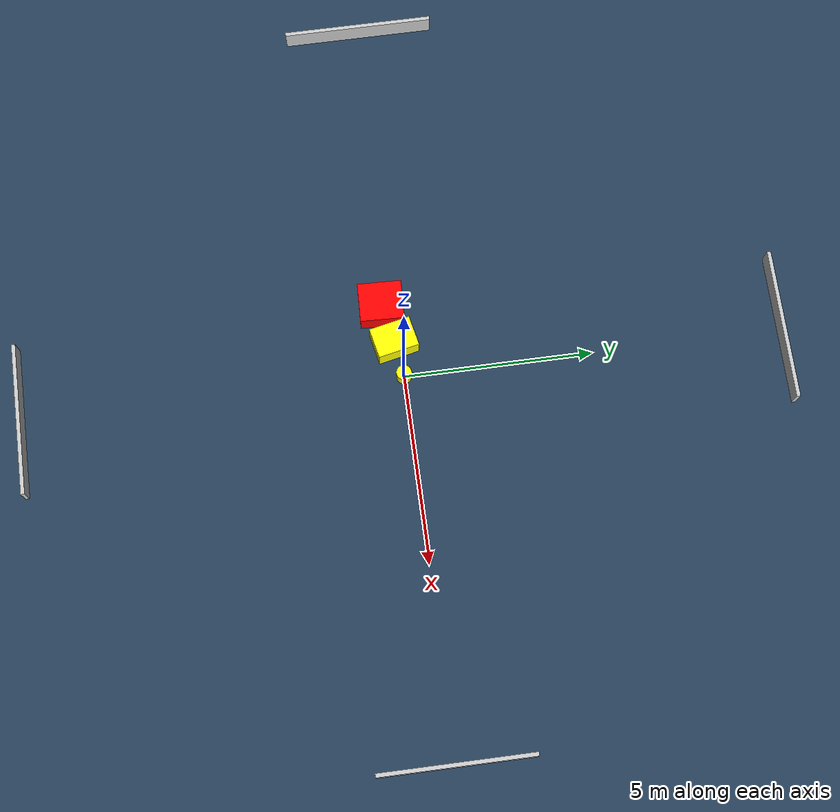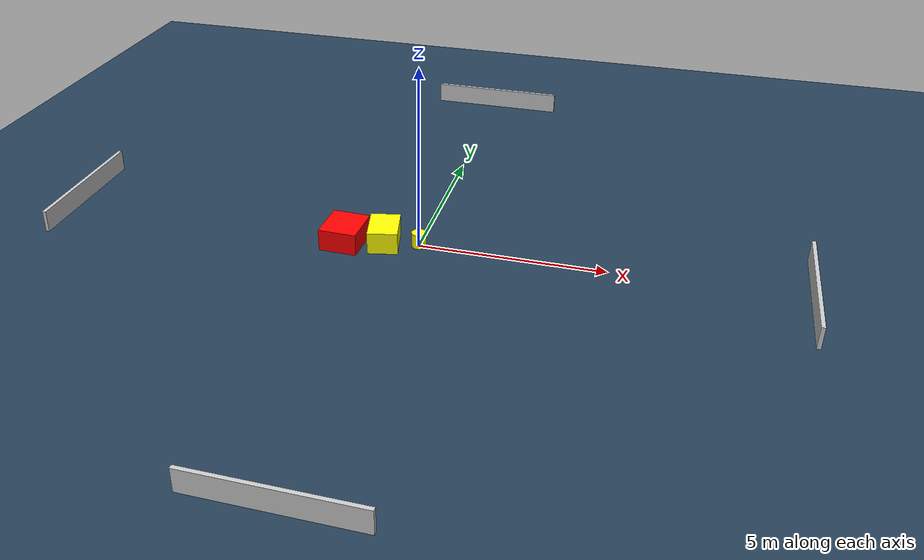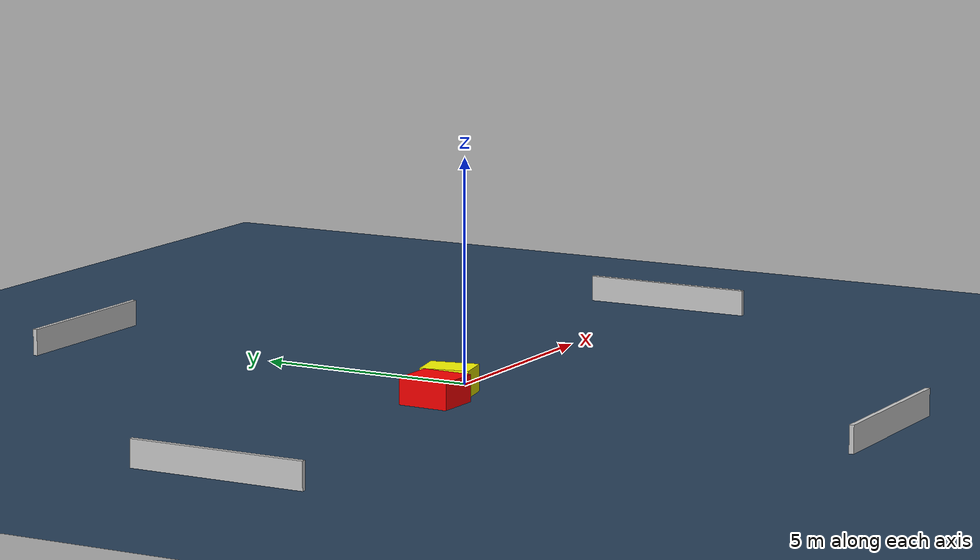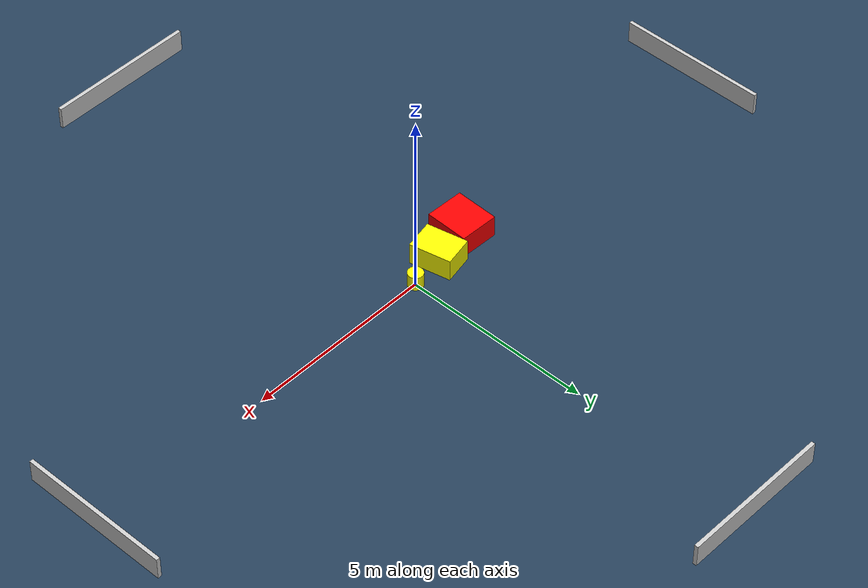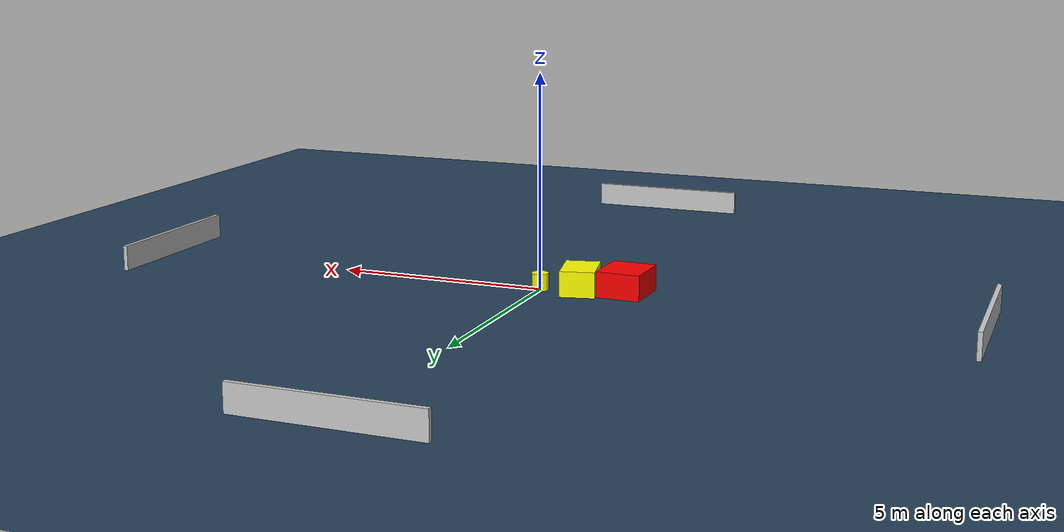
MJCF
<?xml version="1.0" ?>
<mujoco model="generated_environment">
  <option timestep="0.01" integrator="RK4" cone="elliptic"/>
  <default>
    <geom density="1"/>
  </default>
  <asset>
    <texture builtin="gradient" height="3072" name="skybox" rgb1="0.3 0.5 0.7" rgb2="0 0 0" type="skybox" width="512"/>
    <texture builtin="checker" height="300" name="groundplane" rgb1="0.2 0.3 0.4" rgb2="0.1 0.2 0.3" type="2d" width="300"/>
    <material name="groundplane" reflectance="0.2" texrepeat="5 5" texture="groundplane"/>
  </asset>
  <worldbody>
    <light dir="0 0 -1" directional="true" pos="0 0 1.5"/>
    <geom condim="3" friction="0.5 0.005 0.001" material="groundplane" name="floor" pos="0 0 0" size="0 0 0.05" type="plane"/>
    <body name="walls">
      <geom name="wall_1" condim="4" pos="-10.0 0.0 0.3" rgba="0.800000011920929 0.800000011920929 0.800000011920929 1.0" size="0.05 2.0 0.3" type="box"/>
      <geom name="wall_2" condim="4" pos="10.0 0.0 0.3" rgba="0.800000011920929 0.800000011920929 0.800000011920929 1.0" size="0.05 2.0 0.3" type="box"/>
      <geom name="wall_3" condim="4" pos="0.0 -10.0 0.3" rgba="0.800000011920929 0.800000011920929 0.800000011920929 1.0" size="2.0 0.05 0.3" type="box"/>
      <geom name="wall_4" condim="4" pos="0.0 10.0 0.3" rgba="0.800000011920929 0.800000011920929 0.800000011920929 1.0" size="2.0 0.05 0.3" type="box"/>
    </body>
    <body name="robot">
      <joint name="joint_x" type="slide" pos="0 0 0" axis="1 0 0"/>
      <joint name="joint_y" type="slide" pos="0 0 0" axis="0 1 0"/>
      <geom name="robot" type="cylinder" pos="0.0 0.0 0.2" size="0.2 0.2 0.0" mass="5.0" friction="1.0 0.005 0.0001" condim="4" rgba="1.0 1.0 0.0 1.0"/>
    </body>
    <body name="obstacle_1_movable">
      <geom name="obstacle_1_movable" condim="4" pos="-0.9290708173814469 -0.13924122557039306 0.3" euler="0 0 101.89492908056303" friction="0.0 0.005 0.001" rgba="1.0 1.0 0.0 1.0" size="0.5501667241503934 0.4026912200913395 0.3" type="box" mass="0.1"/>
      <joint type="free"/>
    </body>
    <body name="obstacle_2_static">
      <geom name="obstacle_2_static" condim="4" pos="-1.961591625514437 -0.3629877506005268 0.3" euler="0 0 268.14678279980313" friction="0.0 0.005 0.001" rgba="1.0 0.0 0.0 1.0" size="0.5784642271420362 0.5167238039604227 0.3" type="box"/>
    </body>
  </worldbody>
  <actuator>
    <motor name="actuator_x" joint="joint_x" gear="1" ctrlrange="-1 1"/>
    <motor name="actuator_y" joint="joint_y" gear="1" ctrlrange="-1 1"/>
  </actuator>
</mujoco>
